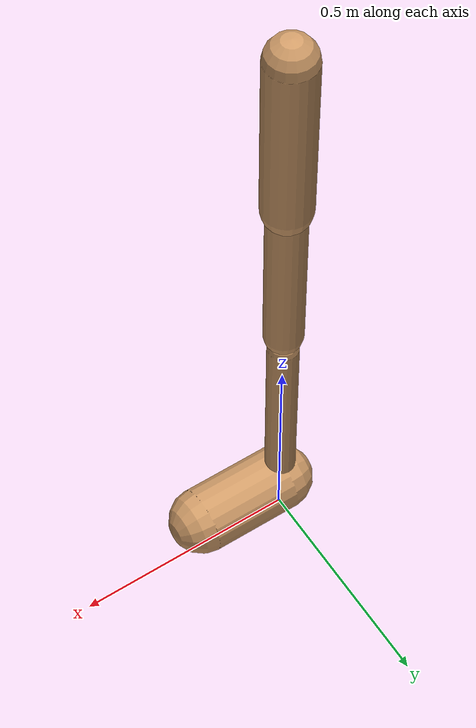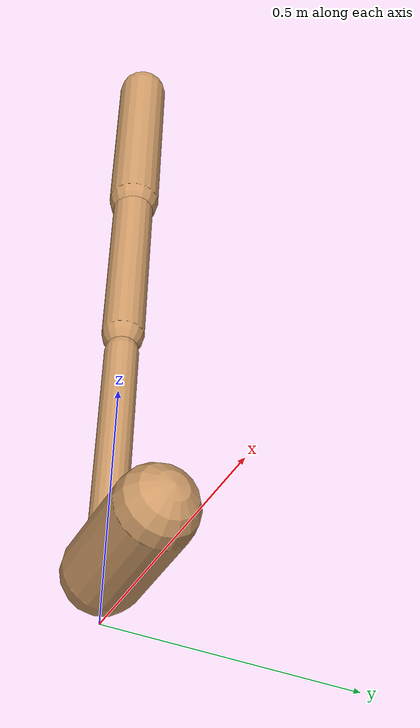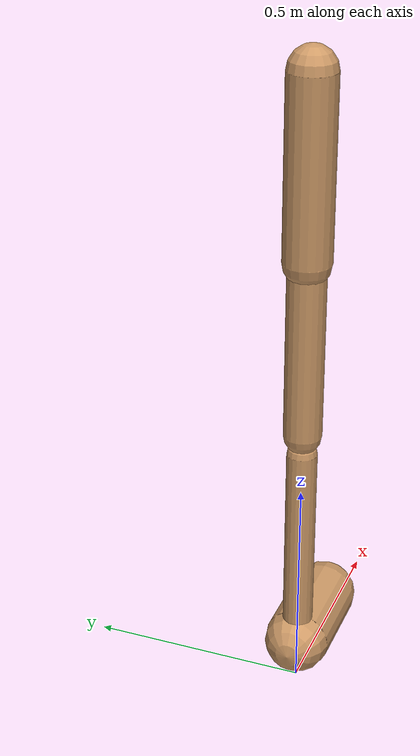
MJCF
<mujoco model="walker2d">
  <compiler angle="degree" coordinate="global" inertiafromgeom="true" />
  <default>
    <joint armature="0.01" damping=".1" limited="true" />
    <geom conaffinity="0" condim="3" contype="1" density="1000" friction="0.8 .1 .1" rgba="0.8 0.6 .4 1" />
  </default>
  <option integrator="RK4" timestep="0.002" />
  <worldbody>

    <body name="torso" pos="0 0 -0.09795966926619216">
      <joint armature="0" axis="1 0 0" damping="0" limited="false" name="ignorex" pos="0 0 0" stiffness="0" type="slide" />
      <joint armature="0" axis="0 0 1" damping="0" limited="false" name="ignorez" pos="0 0 0" ref="1.25" stiffness="0" type="slide" />
      <joint armature="0" axis="0 1 0" damping="0" limited="false" name="ignorey" pos="0 0 0" stiffness="0" type="hinge" />
      <geom fromto="0 0 1.45 0 0 1.05" name="torso_geom" size="0.05323241768351941" type="capsule" />
      <body name="thigh">
        <joint axis="0 -1 0" name="thigh_joint" pos="0 0 1.05" range="-150 0" type="hinge" />
        <geom fromto="0.0 0.0 1.05 0.0 0.0 0.6464019485997752" name="thigh_geom" size="0.04256354548228669" type="capsule" />
        <body name="leg" pos="0.0 0.0 0.0464019485997752">
          <joint axis="0 -1 0" name="leg_joint" pos="0 0 0.6" range="-150 0" type="hinge" />
          <geom fromto="0.0 0.0 0.6 0.0 0.0 0.15155772066641693" name="leg_geom" size="0.03405083638582935" type="capsule" />
          <body name="foot" pos="0.0 0.0 0.05155772066641692">
            <joint axis="0 -1 0" name="foot_joint" pos="0 0 0.1" range="-45 45" type="hinge" />
            <geom fromto="-0.0 0.0 0.1 0.20437791614473713 0.0 0.1" name="foot_geom" size="0.07467494460269353" type="capsule" />
          </body>
        </body>
      </body>

      <body name="thigh_left">
        <joint axis="0 -1 0" name="thigh_left_joint" pos="0 0 1.05" range="-150 0" type="hinge" />
        <geom fromto="0.0 0.0 1.05 0.0 0.0 0.6464019485997752" name="thigh_left_geom" rgba=".7 .3 .6 1" size="0.04256354548228669" type="capsule" />
        <body name="leg_left" pos="0.0 0.0 0.0464019485997752">
          <joint axis="0 -1 0" name="leg_left_joint" pos="0 0 0.6" range="-150 0" type="hinge" />
          <geom fromto="0.0 0.0 0.6 0.0 0.0 0.15155772066641693" name="leg_left_geom" rgba=".7 .3 .6 1" size="0.03405083638582935" type="capsule" />
          <body name="foot_left" pos="0.0 0.0 0.05155772066641692">
            <joint axis="0 -1 0" name="foot_left_joint" pos="0 0 0.1" range="-45 45" type="hinge" />
            <geom fromto="-0.0 0.0 0.1 0.20437791614473713 0.0 0.1" name="foot_left_geom" rgba=".7 .3 .6 1" size="0.07467494460269353" type="capsule" />
          </body>
        </body>
      </body>
    </body>
  </worldbody>
  <actuator>

    <motor ctrllimited="true" ctrlrange="-1.0 1.0" gear="100" joint="thigh_joint" />
    <motor ctrllimited="true" ctrlrange="-1.0 1.0" gear="100" joint="leg_joint" />
    <motor ctrllimited="true" ctrlrange="-1.0 1.0" gear="100" joint="foot_joint" />
    <motor ctrllimited="true" ctrlrange="-1.0 1.0" gear="100" joint="thigh_left_joint" />
    <motor ctrllimited="true" ctrlrange="-1.0 1.0" gear="100" joint="leg_left_joint" />
    <motor ctrllimited="true" ctrlrange="-1.0 1.0" gear="100" joint="foot_left_joint" />

  </actuator>
</mujoco>
